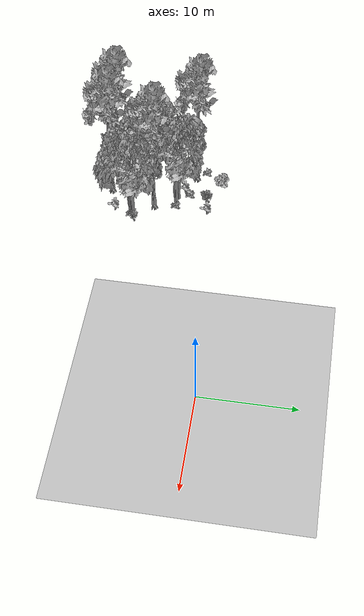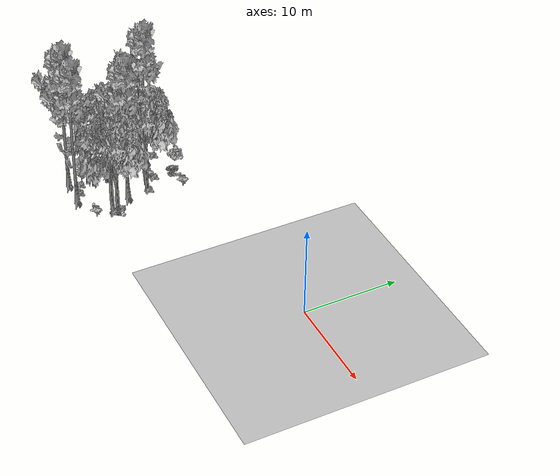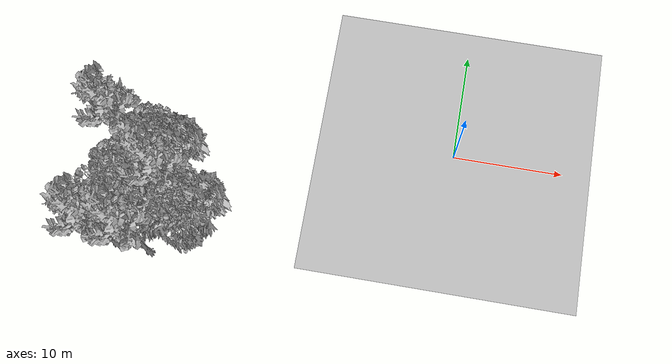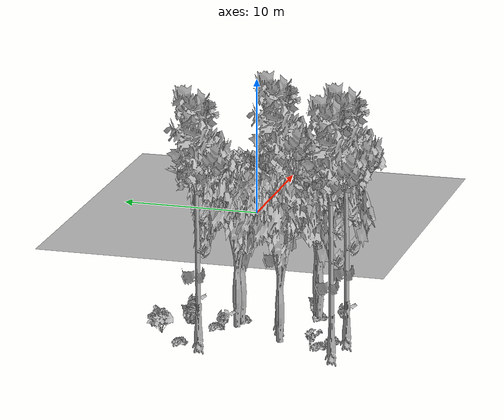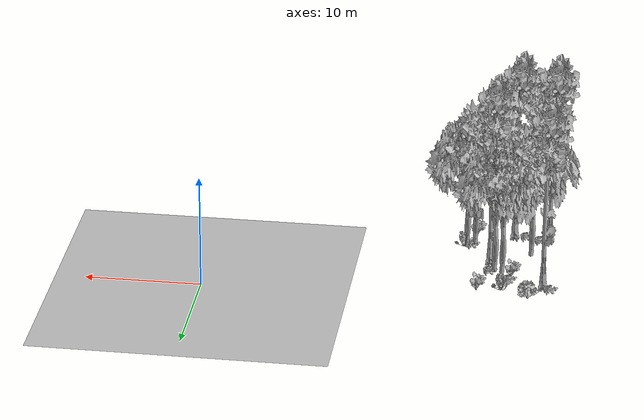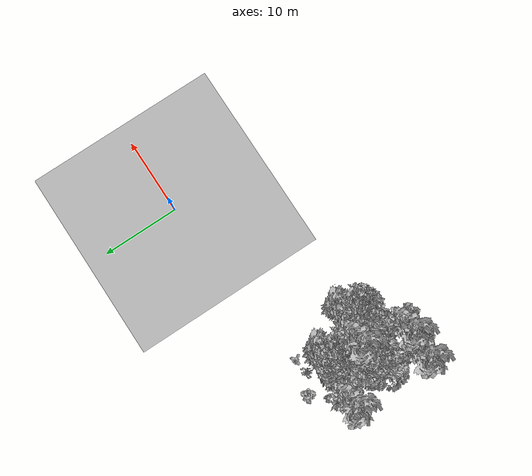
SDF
<sdf version="1.7">
 <world name="default">
  <model name="ground_plane">
   <static>1</static>
   <link name="link">
    <collision name="collision">
     <pose>-50 0 0 0 -0 0</pose>
     <geometry><plane><normal>0 0 1</normal><size>80 80</size></plane></geometry>
     <surface><contact><ode><min_depth>0.01</min_depth><max_vel>0</max_vel></ode></contact></surface>
    </collision>
    <visual name="grass">
     <cast_shadows>0</cast_shadows>
     <geometry>
      <mesh>
       <scale>0.46714285714285714 0.46714285714285714 0.1</scale>
       <uri>file://grass_plane/meshes/grass_plane.dae</uri>
      </mesh>
     </geometry>
    </visual>
   </link>
  </model>
  <model name="Tree 43">
   <static>1</static>
   <pose>-28.720635342159824 -13.148605127329489 0 1.57079 -0 0</pose>
   <link name="link">
    <collision name="collision">
     <geometry><mesh><scale>3.5 5 3.5</scale><uri>model://tree_9/meshes/tree_9.obj</uri></mesh></geometry>
    </collision>
    <visual name="visual">
     <geometry><mesh><scale>3.5 5 3.5</scale><uri>model://tree_9/meshes/tree_9.obj</uri></mesh></geometry>
    </visual>
   </link>
  </model>
  <model name="Tree 56">
   <static>1</static>
   <pose>-25.63976455871522 -13.367431837919533 0 1.57079 -0 0</pose>
   <link name="link">
    <collision name="collision">
     <geometry><mesh><scale>3.5 5 3.5</scale><uri>model://tree_9/meshes/tree_9.obj</uri></mesh></geometry>
    </collision>
    <visual name="visual">
     <geometry><mesh><scale>3.5 5 3.5</scale><uri>model://tree_9/meshes/tree_9.obj</uri></mesh></geometry>
    </visual>
   </link>
  </model>
  <model name="Tree 101">
   <static>1</static>
   <pose>-27.47098512087684 -9.3192178868388 0 1.57079 -0 0</pose>
   <link name="link">
    <collision name="collision">
     <geometry><mesh><scale>3.5 5 3.5</scale><uri>model://tree_2/meshes/tree_2.obj</uri></mesh></geometry>
    </collision>
    <visual name="visual">
     <geometry><mesh><scale>3.5 5 3.5</scale><uri>model://tree_2/meshes/tree_2.obj</uri></mesh></geometry>
    </visual>
   </link>
  </model>
  <model name="Tree 113">
   <static>1</static>
   <pose>-25.246309560713996 -5.780154050264358 0 1.57079 -0 0</pose>
   <link name="link">
    <collision name="collision">
     <geometry><mesh><scale>3.5 5 3.5</scale><uri>model://tree_2/meshes/tree_2.obj</uri></mesh></geometry>
    </collision>
    <visual name="visual">
     <geometry><mesh><scale>3.5 5 3.5</scale><uri>model://tree_2/meshes/tree_2.obj</uri></mesh></geometry>
    </visual>
   </link>
  </model>
  <model name="Tree 166">
   <static>1</static>
   <pose>-22.489213478829587 -10.665891506724918 0 1.57079 -0 0</pose>
   <link name="link">
    <collision name="collision">
     <geometry><mesh><scale>3.5 5 3.5</scale><uri>model://tree_2/meshes/tree_2.obj</uri></mesh></geometry>
    </collision>
    <visual name="visual">
     <geometry><mesh><scale>3.5 5 3.5</scale><uri>model://tree_2/meshes/tree_2.obj</uri></mesh></geometry>
    </visual>
   </link>
  </model>
  <model name="Tree 216">
   <static>1</static>
   <pose>-21.79858618360382 -10.318143909783373 0 1.57079 -0 0</pose>
   <link name="link">
    <collision name="collision">
     <geometry><mesh><scale>3.5 5 3.5</scale><uri>model://tree_2/meshes/tree_2.obj</uri></mesh></geometry>
    </collision>
    <visual name="visual">
     <geometry><mesh><scale>3.5 5 3.5</scale><uri>model://tree_2/meshes/tree_2.obj</uri></mesh></geometry>
    </visual>
   </link>
  </model>
  <model name="Tree 285">
   <static>1</static>
   <pose>-24.58371435038206 -5.925795291017309 0 1.57079 -0 0</pose>
   <link name="link">
    <collision name="collision">
     <geometry><mesh><scale>3.5 5 3.5</scale><uri>model://tree_2/meshes/tree_2.obj</uri></mesh></geometry>
    </collision>
    <visual name="visual">
     <geometry><mesh><scale>3.5 5 3.5</scale><uri>model://tree_2/meshes/tree_2.obj</uri></mesh></geometry>
    </visual>
   </link>
  </model>
  <model name="Tree 558">
   <static>1</static>
   <pose>-23.912188887900037 -8.30602515952819 0 1.57079 -0 0</pose>
   <link name="link">
    <collision name="collision">
     <geometry><mesh><scale>3.5 5 3.5</scale><uri>model://tree_9/meshes/tree_9.obj</uri></mesh></geometry>
    </collision>
    <visual name="visual">
     <geometry><mesh><scale>3.5 5 3.5</scale><uri>model://tree_9/meshes/tree_9.obj</uri></mesh></geometry>
    </visual>
   </link>
  </model>
  <model name="Tree 612">
   <static>1</static>
   <pose>-28.784771838221335 -4.1857012819154065 0 1.57079 -0 0</pose>
   <link name="link">
    <collision name="collision">
     <geometry><mesh><scale>3.5 5 3.5</scale><uri>model://tree_9/meshes/tree_9.obj</uri></mesh></geometry>
    </collision>
    <visual name="visual">
     <geometry><mesh><scale>3.5 5 3.5</scale><uri>model://tree_9/meshes/tree_9.obj</uri></mesh></geometry>
    </visual>
   </link>
  </model>
  <model name="Bush 36">
   <static>1</static>
   <pose>-26.734936389538326 -12.695023490033186 0 1.57079 -0 0</pose>
   <link name="link">
    <collision name="collision">
     <geometry><mesh><scale>2 2 2</scale><uri>model://bush_2/meshes/bush_2.obj</uri></mesh></geometry>
     <surface><contact><collide_without_contact>false</collide_without_contact></contact></surface>
    </collision>
    <visual name="visual">
     <geometry><mesh><scale>2 2 2</scale><uri>model://bush_2/meshes/bush_2.obj</uri></mesh></geometry>
    </visual>
   </link>
  </model>
  <model name="Bush 50">
   <static>1</static>
   <pose>-23.258513632621845 -2.283639834989714 0 1.57079 -0 0</pose>
   <link name="link">
    <collision name="collision">
     <geometry><mesh><scale>2 2 2</scale><uri>model://bush_0/meshes/bush_0.obj</uri></mesh></geometry>
     <surface><contact><collide_without_contact>false</collide_without_contact></contact></surface>
    </collision>
    <visual name="visual">
     <geometry><mesh><scale>2 2 2</scale><uri>model://bush_0/meshes/bush_0.obj</uri></mesh></geometry>
    </visual>
   </link>
  </model>
  <model name="Bush 58">
   <static>1</static>
   <pose>-21.476767277058013 -10.233114609451484 0 1.57079 -0 0</pose>
   <link name="link">
    <collision name="collision">
     <geometry><mesh><scale>2 2 2</scale><uri>model://bush_4/meshes/bush_4.obj</uri></mesh></geometry>
     <surface><contact><collide_without_contact>false</collide_without_contact></contact></surface>
    </collision>
    <visual name="visual">
     <geometry><mesh><scale>2 2 2</scale><uri>model://bush_4/meshes/bush_4.obj</uri></mesh></geometry>
    </visual>
   </link>
  </model>
  <model name="Bush 140">
   <static>1</static>
   <pose>-25.380649109897902 -2.820036254068171 0 1.57079 -0 0</pose>
   <link name="link">
    <collision name="collision">
     <geometry><mesh><scale>2 2 2</scale><uri>model://bush_4/meshes/bush_4.obj</uri></mesh></geometry>
     <surface><contact><collide_without_contact>false</collide_without_contact></contact></surface>
    </collision>
    <visual name="visual">
     <geometry><mesh><scale>2 2 2</scale><uri>model://bush_4/meshes/bush_4.obj</uri></mesh></geometry>
    </visual>
   </link>
  </model>
  <model name="Bush 176">
   <static>1</static>
   <pose>-29.501087026836775 -3.1190511406938413 0 1.57079 -0 0</pose>
   <link name="link">
    <collision name="collision">
     <geometry><mesh><scale>2 2 2</scale><uri>model://bush_2/meshes/bush_2.obj</uri></mesh></geometry>
     <surface><contact><collide_without_contact>false</collide_without_contact></contact></surface>
    </collision>
    <visual name="visual">
     <geometry><mesh><scale>2 2 2</scale><uri>model://bush_2/meshes/bush_2.obj</uri></mesh></geometry>
    </visual>
   </link>
  </model>
  <model name="Bush 238">
   <static>1</static>
   <pose>-25.910965513957994 -4.559384358579457 0 1.57079 -0 0</pose>
   <link name="link">
    <collision name="collision">
     <geometry><mesh><scale>2 2 2</scale><uri>model://bush_2/meshes/bush_2.obj</uri></mesh></geometry>
     <surface><contact><collide_without_contact>false</collide_without_contact></contact></surface>
    </collision>
    <visual name="visual">
     <geometry><mesh><scale>2 2 2</scale><uri>model://bush_2/meshes/bush_2.obj</uri></mesh></geometry>
    </visual>
   </link>
  </model>
  <model name="Bush 262">
   <static>1</static>
   <pose>-24.089419555321385 -5.912489076105068 0 1.57079 -0 0</pose>
   <link name="link">
    <collision name="collision">
     <geometry><mesh><scale>2 2 2</scale><uri>model://bush_2/meshes/bush_2.obj</uri></mesh></geometry>
     <surface><contact><collide_without_contact>false</collide_without_contact></contact></surface>
    </collision>
    <visual name="visual">
     <geometry><mesh><scale>2 2 2</scale><uri>model://bush_2/meshes/bush_2.obj</uri></mesh></geometry>
    </visual>
   </link>
  </model>
  <model name="Bush 280">
   <static>1</static>
   <pose>-22.400664395727087 -12.415828964948705 0 1.57079 -0 0</pose>
   <link name="link">
    <collision name="collision">
     <geometry><mesh><scale>2 2 2</scale><uri>model://bush_0/meshes/bush_0.obj</uri></mesh></geometry>
     <surface><contact><collide_without_contact>false</collide_without_contact></contact></surface>
    </collision>
    <visual name="visual">
     <geometry><mesh><scale>2 2 2</scale><uri>model://bush_0/meshes/bush_0.obj</uri></mesh></geometry>
    </visual>
   </link>
  </model>
  <model name="Bush 436">
   <static>1</static>
   <pose>-27.686430136764322 -1.3401074176098007 0 1.57079 -0 0</pose>
   <link name="link">
    <collision name="collision">
     <geometry><mesh><scale>2 2 2</scale><uri>model://bush_1/meshes/bush_1.obj</uri></mesh></geometry>
     <surface><contact><collide_without_contact>false</collide_without_contact></contact></surface>
    </collision>
    <visual name="visual">
     <geometry><mesh><scale>2 2 2</scale><uri>model://bush_1/meshes/bush_1.obj</uri></mesh></geometry>
    </visual>
   </link>
  </model>
  <model name="Bush 450">
   <static>1</static>
   <pose>-28.59568561588088 -11.703330603848077 0 1.57079 -0 0</pose>
   <link name="link">
    <collision name="collision">
     <geometry><mesh><scale>2 2 2</scale><uri>model://bush_5/meshes/bush_5.obj</uri></mesh></geometry>
     <surface><contact><collide_without_contact>false</collide_without_contact></contact></surface>
    </collision>
    <visual name="visual">
     <geometry><mesh><scale>2 2 2</scale><uri>model://bush_5/meshes/bush_5.obj</uri></mesh></geometry>
    </visual>
   </link>
  </model>
  <model name="Bush 452">
   <static>1</static>
   <pose>-25.99682436576697 -5.110622100045944 0 1.57079 -0 0</pose>
   <link name="link">
    <collision name="collision">
     <geometry><mesh><scale>2 2 2</scale><uri>model://bush_0/meshes/bush_0.obj</uri></mesh></geometry>
     <surface><contact><collide_without_contact>false</collide_without_contact></contact></surface>
    </collision>
    <visual name="visual">
     <geometry><mesh><scale>2 2 2</scale><uri>model://bush_0/meshes/bush_0.obj</uri></mesh></geometry>
    </visual>
   </link>
  </model>
  <model name="Bush 461">
   <static>1</static>
   <pose>-28.017839992332924 -12.140987598103532 0 1.57079 -0 0</pose>
   <link name="link">
    <collision name="collision">
     <geometry><mesh><scale>2 2 2</scale><uri>model://bush_2/meshes/bush_2.obj</uri></mesh></geometry>
     <surface><contact><collide_without_contact>false</collide_without_contact></contact></surface>
    </collision>
    <visual name="visual">
     <geometry><mesh><scale>2 2 2</scale><uri>model://bush_2/meshes/bush_2.obj</uri></mesh></geometry>
    </visual>
   </link>
  </model>
  <model name="Bush 558">
   <static>1</static>
   <pose>-22.168196550592274 -10.647091997963997 0 1.57079 -0 0</pose>
   <link name="link">
    <collision name="collision">
     <geometry><mesh><scale>2 2 2</scale><uri>model://bush_2/meshes/bush_2.obj</uri></mesh></geometry>
     <surface><contact><collide_without_contact>false</collide_without_contact></contact></surface>
    </collision>
    <visual name="visual">
     <geometry><mesh><scale>2 2 2</scale><uri>model://bush_2/meshes/bush_2.obj</uri></mesh></geometry>
    </visual>
   </link>
  </model>
  <model name="Bush 565">
   <static>1</static>
   <pose>-25.343594710781737 -2.5514999993509306 0 1.57079 -0 0</pose>
   <link name="link">
    <collision name="collision">
     <geometry><mesh><scale>2 2 2</scale><uri>model://bush_4/meshes/bush_4.obj</uri></mesh></geometry>
     <surface><contact><collide_without_contact>false</collide_without_contact></contact></surface>
    </collision>
    <visual name="visual">
     <geometry><mesh><scale>2 2 2</scale><uri>model://bush_4/meshes/bush_4.obj</uri></mesh></geometry>
    </visual>
   </link>
  </model>
 </world>
</sdf>
